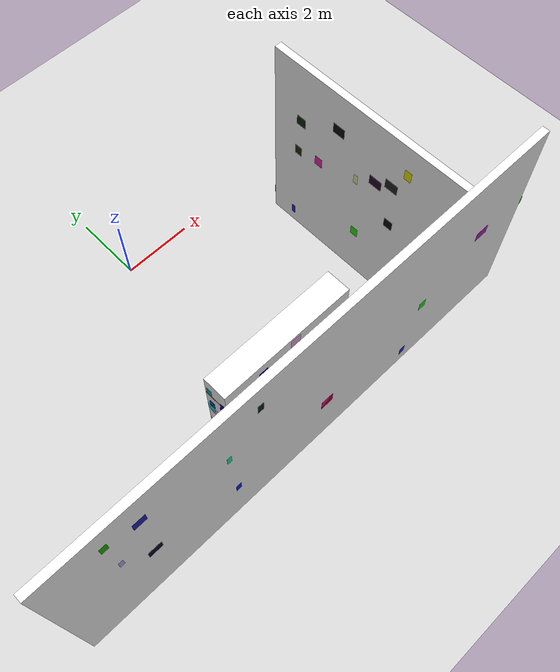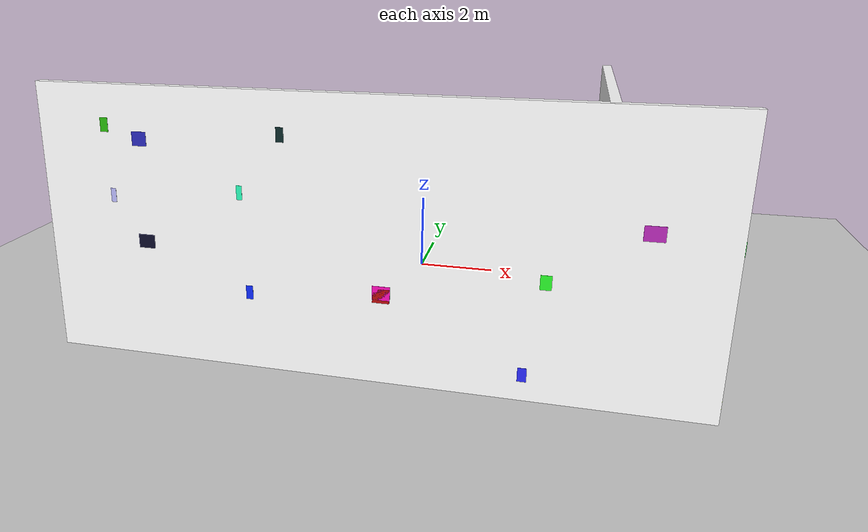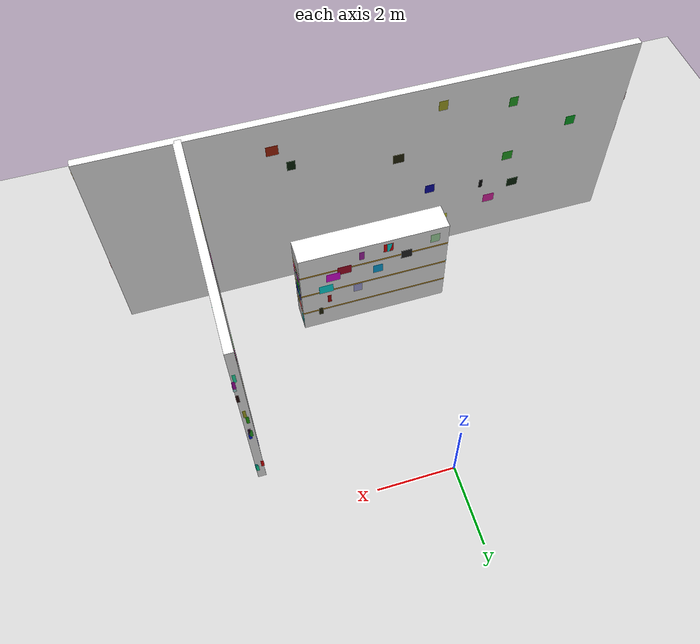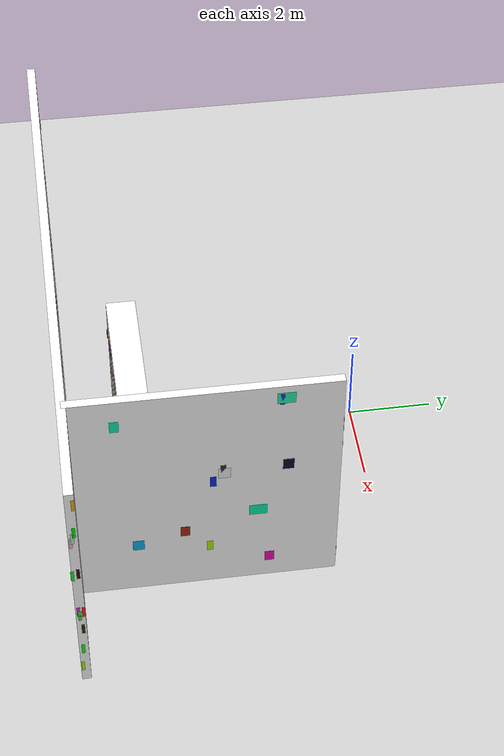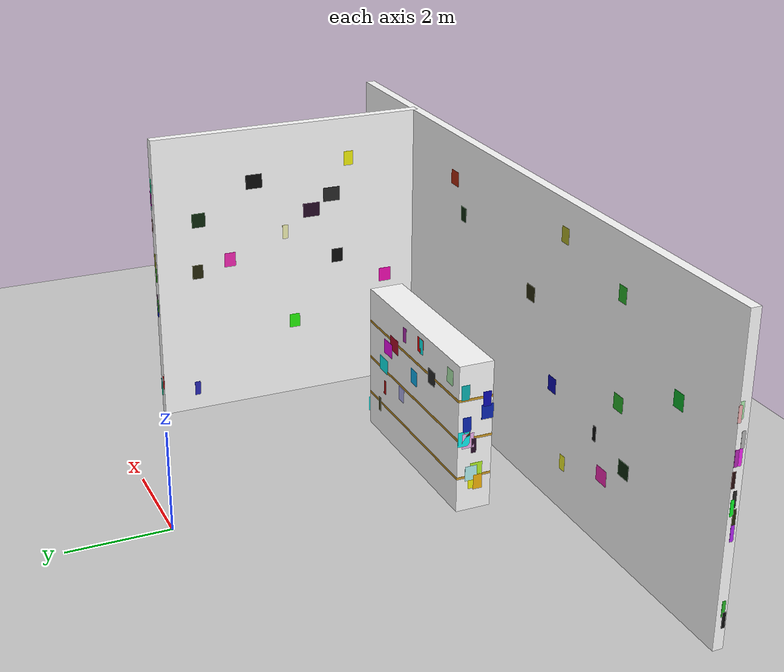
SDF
<sdf version="1.9">
 <world name="default">
  <model name="ground_plane">
   <static>true</static>
   <link name="link">
    <collision name="collision">
     <geometry><plane><normal>0 0 1</normal><size>1 1</size></plane></geometry>
    </collision>
    <visual name="visual">
     <geometry><plane><normal>0 0 1</normal><size>500 500</size></plane></geometry>
     <material>
      <ambient>0.8 0.8 0.8 1</ambient>
      <diffuse>0.8 0.8 0.8 1</diffuse>
      <specular>0.8 0.8 0.8 1</specular>
     </material>
    </visual>
    <inertial>
     <mass>1</mass>
     <inertia><ixx>1</ixx><ixy>0</ixy><ixz>0</ixz><iyy>1</iyy><iyz>0</iyz><izz>1</izz></inertia>
    </inertial>
   </link>
  </model>
  <model name="wall_south">
   <static>true</static>
   <pose>0 -7 3 0 0 0</pose>
   <link name="structure">
    <collision name="collision"><geometry><box><size>14 0.2 6</size></box></geometry></collision>
    <visual name="surface">
     <geometry><box><size>14 0.2 6</size></box></geometry>
     <material>
      <ambient>1 1 1 1</ambient>
      <diffuse>1 1 1 1</diffuse>
      <pbr>
       <metal>
        <albedo_map>model://warehouse_textures/materials/textures/wall_south.png</albedo_map>
        <metalness>0</metalness>
        <roughness>1</roughness>
       </metal>
      </pbr>
     </material>
    </visual>
    <visual name="feature_0_0">
     <pose>-7.002 0.05013029429316511 1.3344337788280045 0 0 0</pose>
     <geometry><box><size>0.004 0.06999999999999999 0.3</size></box></geometry>
     <material><ambient>0.7 0.95 0.7 1</ambient><diffuse>0.7 0.95 0.7 1</diffuse></material>
    </visual>
    <visual name="feature_0_1">
     <pose>-7.002 0.053626879045490364 0.5126375350169363 0 0 0</pose>
     <geometry><box><size>0.004 0.06999999999999999 0.3</size></box></geometry>
     <material><ambient>0.7 0.15 0.7 1</ambient><diffuse>0.7 0.15 0.7 1</diffuse></material>
    </visual>
    <visual name="feature_0_2">
     <pose>-7.002 -0.014323555653300915 0.5184565482892922 0 0 0</pose>
     <geometry><box><size>0.004 0.06999999999999999 0.3</size></box></geometry>
     <material><ambient>0.95 0.15 0.95 1</ambient><diffuse>0.95 0.15 0.95 1</diffuse></material>
    </visual>
    <visual name="feature_0_3">
     <pose>-7.002 0.07942451934433421 1.2721664787519549 0 0 0</pose>
     <geometry><box><size>0.004 0.06999999999999999 0.3</size></box></geometry>
     <material><ambient>0.95 0.7 0.7 1</ambient><diffuse>0.95 0.7 0.7 1</diffuse></material>
    </visual>
    <visual name="feature_0_4">
     <pose>-7.002 -0.031241482324715887 0.8213783852477801 0 0 0</pose>
     <geometry><box><size>0.004 0.06999999999999999 0.3</size></box></geometry>
     <material><ambient>0.7 0.7 0.7 1</ambient><diffuse>0.7 0.7 0.7 1</diffuse></material>
    </visual>
    <visual name="feature_0_5">
     <pose>-7.002 0.033509999577640975 -0.36077187990043225 0 0 0</pose>
     <geometry><box><size>0.004 0.06999999999999999 0.3</size></box></geometry>
     <material><ambient>0.04 0.95 0.15 1</ambient><diffuse>0.04 0.95 0.15 1</diffuse></material>
    </visual>
    <visual name="feature_0_6">
     <pose>-7.002 -0.02649520504299914 -2.222417838808128 0 0 0</pose>
     <geometry><box><size>0.004 0.06999999999999999 0.3</size></box></geometry>
     <material><ambient>0.15 0.7 0.15 1</ambient><diffuse>0.15 0.7 0.15 1</diffuse></material>
    </visual>
    <visual name="feature_0_7">
     <pose>-7.002 0.006326238674518994 -0.21376637762866313 0 0 0</pose>
     <geometry><box><size>0.004 0.06999999999999999 0.3</size></box></geometry>
     <material><ambient>0.15 0.15 0.15 1</ambient><diffuse>0.15 0.15 0.15 1</diffuse></material>
    </visual>
    <visual name="feature_0_8">
     <pose>-7.002 -0.02319102826291799 -0.5412880793490009 0 0 0</pose>
     <geometry><box><size>0.004 0.06999999999999999 0.3</size></box></geometry>
     <material><ambient>0.15 0.15 0.04 1</ambient><diffuse>0.15 0.15 0.04 1</diffuse></material>
    </visual>
    <visual name="feature_0_9">
     <pose>-7.002 -0.05281084595567803 -2.4427364049877722 0 0 0</pose>
     <geometry><box><size>0.004 0.06999999999999999 0.3</size></box></geometry>
     <material><ambient>0.04 0.04 0.04 1</ambient><diffuse>0.04 0.04 0.04 1</diffuse></material>
    </visual>
    <visual name="feature_0_10">
     <pose>-7.002 -0.02206726810736683 -0.8268935963826314 0 0 0</pose>
     <geometry><box><size>0.004 0.06999999999999999 0.3</size></box></geometry>
     <material><ambient>0.7 0.15 0.95 1</ambient><diffuse>0.7 0.15 0.95 1</diffuse></material>
    </visual>
    <visual name="feature_0_11">
     <pose>-7.002 0.06690281060180585 0.13786475028770706 0 0 0</pose>
     <geometry><box><size>0.004 0.06999999999999999 0.3</size></box></geometry>
     <material><ambient>0.15 0.04 0.04 1</ambient><diffuse>0.15 0.04 0.04 1</diffuse></material>
    </visual>
    <visual name="feature_1_0">
     <pose>7.002 0.06450336411470818 2.68545447530506 0 0 0</pose>
     <geometry><box><size>0.004 0.06999999999999999 0.3</size></box></geometry>
     <material><ambient>0.95 0.7 0.04 1</ambient><diffuse>0.95 0.7 0.04 1</diffuse></material>
    </visual>
    <visual name="feature_1_1">
     <pose>7.002 -0.08260006728813388 0.5347834316504732 0 0 0</pose>
     <geometry><box><size>0.004 0.06999999999999999 0.3</size></box></geometry>
     <material><ambient>0.04 0.95 0.15 1</ambient><diffuse>0.04 0.95 0.15 1</diffuse></material>
    </visual>
    <visual name="feature_1_2">
     <pose>7.002 -0.011583482624690819 -1.9228539210441242 0 0 0</pose>
     <geometry><box><size>0.004 0.06999999999999999 0.3</size></box></geometry>
     <material><ambient>0.15 0.95 0.15 1</ambient><diffuse>0.15 0.95 0.15 1</diffuse></material>
    </visual>
    <visual name="feature_1_3">
     <pose>7.002 -0.013183834536215355 -0.7871604675557424 0 0 0</pose>
     <geometry><box><size>0.004 0.06999999999999999 0.3</size></box></geometry>
     <material><ambient>0.15 0.95 0.15 1</ambient><diffuse>0.15 0.95 0.15 1</diffuse></material>
    </visual>
    <visual name="feature_1_4">
     <pose>7.002 0.07380699173682594 -0.664364832384468 0 0 0</pose>
     <geometry><box><size>0.004 0.06999999999999999 0.3</size></box></geometry>
     <material><ambient>0.95 0.15 0.15 1</ambient><diffuse>0.95 0.15 0.15 1</diffuse></material>
    </visual>
    <visual name="feature_1_5">
     <pose>7.002 -0.048694230574671815 1.5630788077055522 0 0 0</pose>
     <geometry><box><size>0.004 0.06999999999999999 0.3</size></box></geometry>
     <material><ambient>0.95 0.7 0.95 1</ambient><diffuse>0.95 0.7 0.95 1</diffuse></material>
    </visual>
    <visual name="feature_1_6">
     <pose>7.002 0.028389967478109568 1.868636731459282 0 0 0</pose>
     <geometry><box><size>0.004 0.06999999999999999 0.3</size></box></geometry>
     <material><ambient>0.04 0.95 0.04 1</ambient><diffuse>0.04 0.95 0.04 1</diffuse></material>
    </visual>
    <visual name="feature_1_7">
     <pose>7.002 -0.01131909396849029 1.6887105902124375 0 0 0</pose>
     <geometry><box><size>0.004 0.06999999999999999 0.3</size></box></geometry>
     <material><ambient>0.7 0.95 0.7 1</ambient><diffuse>0.7 0.95 0.7 1</diffuse></material>
    </visual>
    <visual name="feature_1_8">
     <pose>7.002 -0.05081834634932061 -2.52169160086991 0 0 0</pose>
     <geometry><box><size>0.004 0.06999999999999999 0.3</size></box></geometry>
     <material><ambient>0.7 0.95 0.15 1</ambient><diffuse>0.7 0.95 0.15 1</diffuse></material>
    </visual>
    <visual name="feature_1_9">
     <pose>7.002 -0.034713704641175 -0.6536029513765729 0 0 0</pose>
     <geometry><box><size>0.004 0.06999999999999999 0.3</size></box></geometry>
     <material><ambient>0.95 0.15 0.95 1</ambient><diffuse>0.95 0.15 0.95 1</diffuse></material>
    </visual>
    <visual name="feature_1_10">
     <pose>7.002 0.028761669940748094 -1.226467510396191 0 0 0</pose>
     <geometry><box><size>0.004 0.06999999999999999 0.3</size></box></geometry>
     <material><ambient>0.15 0.15 0.04 1</ambient><diffuse>0.15 0.15 0.04 1</diffuse></material>
    </visual>
    <visual name="feature_1_11">
     <pose>7.002 0.03662493447125069 0.5929723749907376 0 0 0</pose>
     <geometry><box><size>0.004 0.06999999999999999 0.3</size></box></geometry>
     <material><ambient>0.15 0.04 0.04 1</ambient><diffuse>0.15 0.04 0.04 1</diffuse></material>
    </visual>
    <visual name="feature_2_0">
     <pose>-2.4029796759381647 -0.10200000000000001 -1.271434456737637 0 0 0</pose>
     <geometry><box><size>0.15301972618142512 0.004 0.3</size></box></geometry>
     <material><ambient>0.04 0.15 0.95 1</ambient><diffuse>0.04 0.15 0.95 1</diffuse></material>
    </visual>
    <visual name="feature_2_1">
     <pose>-4.704728112849553 -0.10200000000000001 1.8899872533510402 0 0 0</pose>
     <geometry><box><size>0.3194365047836309 0.004 0.3</size></box></geometry>
     <material><ambient>0.15 0.15 0.7 1</ambient><diffuse>0.15 0.15 0.7 1</diffuse></material>
    </visual>
    <visual name="feature_2_2">
     <pose>-2.5403862817549006 -0.10200000000000001 0.8930933905496885 0 0 0</pose>
     <geometry><box><size>0.1221163689964482 0.004 0.3</size></box></geometry>
     <material><ambient>0.15 0.95 0.7 1</ambient><diffuse>0.15 0.95 0.7 1</diffuse></material>
    </visual>
    <visual name="feature_2_3">
     <pose>-1.6306037418121857 -0.10200000000000001 2.1312175730096907 0 0 0</pose>
     <geometry><box><size>0.1594067344939466 0.004 0.3</size></box></geometry>
     <material><ambient>0.04 0.15 0.15 1</ambient><diffuse>0.04 0.15 0.15 1</diffuse></material>
    </visual>
    <visual name="feature_2_4">
     <pose>-4.709416479293927 -0.10200000000000001 -0.3308416464242767 0 0 0</pose>
     <geometry><box><size>0.36822410486320134 0.004 0.3</size></box></geometry>
     <material><ambient>0.04 0.04 0.15 1</ambient><diffuse>0.04 0.04 0.15 1</diffuse></material>
    </visual>
    <visual name="feature_2_5">
     <pose>-5.481536256598476 -0.10200000000000001 2.1508934084905516 0 0 0</pose>
     <geometry><box><size>0.1743473653715774 0.004 0.3</size></box></geometry>
     <material><ambient>0.15 0.7 0.04 1</ambient><diffuse>0.15 0.7 0.04 1</diffuse></material>
    </visual>
    <visual name="feature_2_6">
     <pose>3.639597669959689 -0.10200000000000001 -0.44284286626378044 0 0 0</pose>
     <geometry><box><size>0.22242148415727694 0.004 0.3</size></box></geometry>
     <material><ambient>0.15 0.95 0.15 1</ambient><diffuse>0.15 0.95 0.15 1</diffuse></material>
    </visual>
    <visual name="feature_2_7">
     <pose>0.4271078491047673 -0.10200000000000001 -1.0628347992002252 0 0 0</pose>
     <geometry><box><size>0.3516741174449177 0.004 0.3</size></box></geometry>
     <material><ambient>0.7 0.04 0.04 1</ambient><diffuse>0.7 0.04 0.04 1</diffuse></material>
    </visual>
    <visual name="feature_2_8">
     <pose>0.42920601847937156 -0.10200000000000001 -1.0008616115868496 0 0 0</pose>
     <geometry><box><size>0.36893222837835393 0.004 0.3</size></box></geometry>
     <material><ambient>0.95 0.04 0.7 1</ambient><diffuse>0.95 0.04 0.7 1</diffuse></material>
    </visual>
    <visual name="feature_2_9">
     <pose>3.303983123943101 -0.10200000000000001 -2.435756244164814 0 0 0</pose>
     <geometry><box><size>0.18238401828457473 0.004 0.3</size></box></geometry>
     <material><ambient>0.15 0.15 0.95 1</ambient><diffuse>0.15 0.15 0.95 1</diffuse></material>
    </visual>
    <visual name="feature_2_10">
     <pose>5.480055527675781 -0.10200000000000001 0.688664998123341 0 0 0</pose>
     <geometry><box><size>0.39323818227977214 0.004 0.3</size></box></geometry>
     <material><ambient>0.7 0.15 0.7 1</ambient><diffuse>0.7 0.15 0.7 1</diffuse></material>
    </visual>
    <visual name="feature_2_11">
     <pose>-5.404282146829244 -0.10200000000000001 0.6460780768385304 0 0 0</pose>
     <geometry><box><size>0.11832070714311219 0.004 0.3</size></box></geometry>
     <material><ambient>0.7 0.7 0.95 1</ambient><diffuse>0.7 0.7 0.95 1</diffuse></material>
    </visual>
    <visual name="feature_3_0">
     <pose>-3.469024428247825 0.10200000000000001 -1.620479554302231 0 0 0</pose>
     <geometry><box><size>0.32611919888681085 0.004 0.3</size></box></geometry>
     <material><ambient>0.95 0.15 0.7 1</ambient><diffuse>0.95 0.15 0.7 1</diffuse></material>
    </visual>
    <visual name="feature_3_1">
     <pose>2.496609554513557 0.10200000000000001 2.102235758403199 0 0 0</pose>
     <geometry><box><size>0.3041412456497423 0.004 0.3</size></box></geometry>
     <material><ambient>0.7 0.15 0.04 1</ambient><diffuse>0.7 0.15 0.04 1</diffuse></material>
    </visual>
    <visual name="feature_3_2">
     <pose>-1.6444254859621408 0.10200000000000001 -0.642777461246741 0 0 0</pose>
     <geometry><box><size>0.26782309748555577 0.004 0.3</size></box></geometry>
     <material><ambient>0.04 0.04 0.7 1</ambient><diffuse>0.04 0.04 0.7 1</diffuse></material>
    </visual>
    <visual name="feature_3_3">
     <pose>2.0794254198614457 0.10200000000000001 1.465026459522334 0 0 0</pose>
     <geometry><box><size>0.2182699326110329 0.004 0.3</size></box></geometry>
     <material><ambient>0.04 0.15 0.04 1</ambient><diffuse>0.04 0.15 0.04 1</diffuse></material>
    </visual>
    <visual name="feature_3_4">
     <pose>-4.1313465546691575 0.10200000000000001 -1.164722269733362 0 0 0</pose>
     <geometry><box><size>0.3163317013369229 0.004 0.3</size></box></geometry>
     <material><ambient>0.04 0.15 0.04 1</ambient><diffuse>0.04 0.15 0.04 1</diffuse></material>
    </visual>
    <visual name="feature_3_5">
     <pose>-3.155975064294834 0.10200000000000001 -0.9271056754248004 0 0 0</pose>
     <geometry><box><size>0.10317137432118983 0.004 0.3</size></box></geometry>
     <material><ambient>0.04 0.04 0.04 1</ambient><diffuse>0.04 0.04 0.04 1</diffuse></material>
    </visual>
    <visual name="feature_3_6">
     <pose>-3.7281642928547623 0.10200000000000001 1.9566934200549762 0 0 0</pose>
     <geometry><box><size>0.22802913965751254 0.004 0.3</size></box></geometry>
     <material><ambient>0.15 0.7 0.15 1</ambient><diffuse>0.15 0.7 0.15 1</diffuse></material>
    </visual>
    <visual name="feature_3_7">
     <pose>-1.8231379939122307 0.10200000000000001 2.349784061363769 0 0 0</pose>
     <geometry><box><size>0.23568298246755162 0.004 0.3</size></box></geometry>
     <material><ambient>0.7 0.7 0.15 1</ambient><diffuse>0.7 0.7 0.15 1</diffuse></material>
    </visual>
    <visual name="feature_3_8">
     <pose>-2.1495540054644997 0.10200000000000001 -2.029957619902869 0 0 0</pose>
     <geometry><box><size>0.17637276640077826 0.004 0.3</size></box></geometry>
     <material><ambient>0.95 0.95 0.15 1</ambient><diffuse>0.95 0.95 0.15 1</diffuse></material>
    </visual>
    <visual name="feature_3_9">
     <pose>-3.8293673647596727 0.10200000000000001 -0.013000887557255592 0 0 0</pose>
     <geometry><box><size>0.2837734355302372 0.004 0.3</size></box></geometry>
     <material><ambient>0.15 0.7 0.15 1</ambient><diffuse>0.15 0.7 0.15 1</diffuse></material>
    </visual>
    <visual name="feature_3_10">
     <pose>-0.7074972291922821 0.10200000000000001 0.8315936040870096 0 0 0</pose>
     <geometry><box><size>0.3034151856676342 0.004 0.3</size></box></geometry>
     <material><ambient>0.15 0.15 0.04 1</ambient><diffuse>0.15 0.15 0.04 1</diffuse></material>
    </visual>
    <visual name="feature_3_11">
     <pose>-5.507283317989444 0.10200000000000001 0.8140772229232067 0 0 0</pose>
     <geometry><box><size>0.2665901325083502 0.004 0.3</size></box></geometry>
     <material><ambient>0.04 0.7 0.15 1</ambient><diffuse>0.04 0.7 0.15 1</diffuse></material>
    </visual>
   </link>
  </model>
  <model name="room_partition_south">
   <static>true</static>
   <pose>4.6 -4.1 3 0 0 0</pose>
   <link name="structure">
    <collision name="collision"><geometry><box><size>0.2 5.8 6</size></box></geometry></collision>
    <visual name="surface">
     <geometry><box><size>0.2 5.8 6</size></box></geometry>
     <material>
      <ambient>1 1 1 1</ambient>
      <diffuse>1 1 1 1</diffuse>
      <pbr>
       <metal>
        <albedo_map>model://warehouse_textures/materials/textures/room_partition_south.png</albedo_map>
        <metalness>0</metalness>
        <roughness>1</roughness>
       </metal>
      </pbr>
     </material>
    </visual>
    <visual name="feature_0_0">
     <pose>-0.10200000000000001 2.1709150930400947 -2.52344042349194 0 0 0</pose>
     <geometry><box><size>0.004 0.12185791453634244 0.3</size></box></geometry>
     <material><ambient>0.15 0.15 0.7 1</ambient><diffuse>0.15 0.15 0.7 1</diffuse></material>
    </visual>
    <visual name="feature_0_1">
     <pose>-0.10200000000000001 1.3494884280232533 0.27098438040863515 0 0 0</pose>
     <geometry><box><size>0.004 0.24074818795024663 0.3</size></box></geometry>
     <material><ambient>0.95 0.15 0.7 1</ambient><diffuse>0.95 0.15 0.7 1</diffuse></material>
    </visual>
    <visual name="feature_0_2">
     <pose>-0.10200000000000001 -0.050919529782320616 -1.336852252964101 0 0 0</pose>
     <geometry><box><size>0.004 0.2310943071635888 0.3</size></box></geometry>
     <material><ambient>0.15 0.95 0.04 1</ambient><diffuse>0.15 0.95 0.04 1</diffuse></material>
    </visual>
    <visual name="feature_0_3">
     <pose>-0.10200000000000001 -2.159398530668011 -0.6026725821727488 0 0 0</pose>
     <geometry><box><size>0.004 0.27363621435690316 0.3</size></box></geometry>
     <material><ambient>0.95 0.04 0.7 1</ambient><diffuse>0.95 0.04 0.7 1</diffuse></material>
    </visual>
    <visual name="feature_0_4">
     <pose>-0.10200000000000001 1.9909066356012017 1.2194051303418627 0 0 0</pose>
     <geometry><box><size>0.004 0.2854975150144328 0.3</size></box></geometry>
     <material><ambient>0.04 0.15 0.04 1</ambient><diffuse>0.04 0.15 0.04 1</diffuse></material>
    </visual>
    <visual name="feature_0_5">
     <pose>-0.10200000000000001 2.05366636042396 0.10699784121333034 0 0 0</pose>
     <geometry><box><size>0.004 0.22615411521465176 0.3</size></box></geometry>
     <material><ambient>0.15 0.15 0.04 1</ambient><diffuse>0.15 0.15 0.04 1</diffuse></material>
    </visual>
    <visual name="feature_0_6">
     <pose>-0.10200000000000001 -1.3095306119570913 2.1310093648389232 0 0 0</pose>
     <geometry><box><size>0.004 0.20313532304516438 0.3</size></box></geometry>
     <material><ambient>0.95 0.95 0.04 1</ambient><diffuse>0.95 0.95 0.04 1</diffuse></material>
    </visual>
    <visual name="feature_0_7">
     <pose>-0.10200000000000001 -0.466831988143664 1.110566151039989 0 0 0</pose>
     <geometry><box><size>0.004 0.36884349280556994 0.3</size></box></geometry>
     <material><ambient>0.15 0.04 0.15 1</ambient><diffuse>0.15 0.04 0.15 1</diffuse></material>
    </visual>
    <visual name="feature_0_8">
     <pose>-0.10200000000000001 0.12045253341750861 0.7055017036588871 0 0 0</pose>
     <geometry><box><size>0.004 0.12673147228578552 0.3</size></box></geometry>
     <material><ambient>0.95 0.95 0.7 1</ambient><diffuse>0.95 0.95 0.7 1</diffuse></material>
    </visual>
    <visual name="feature_0_9">
     <pose>-0.10200000000000001 -1.039254226042634 0.009838577024662953 0 0 0</pose>
     <geometry><box><size>0.004 0.25501991116502554 0.3</size></box></geometry>
     <material><ambient>0.04 0.04 0.04 1</ambient><diffuse>0.04 0.04 0.04 1</diffuse></material>
    </visual>
    <visual name="feature_0_10">
     <pose>-0.10200000000000001 -0.9282153609606039 1.3938844822769916 0 0 0</pose>
     <geometry><box><size>0.004 0.3683992520736522 0.3</size></box></geometry>
     <material><ambient>0.15 0.15 0.15 1</ambient><diffuse>0.15 0.15 0.15 1</diffuse></material>
    </visual>
    <visual name="feature_0_11">
     <pose>-0.10200000000000001 0.7824751876549971 1.89049786487538 0 0 0</pose>
     <geometry><box><size>0.004 0.3515360641381716 0.3</size></box></geometry>
     <material><ambient>0.04 0.04 0.04 1</ambient><diffuse>0.04 0.04 0.04 1</diffuse></material>
    </visual>
    <visual name="feature_1_0">
     <pose>0.10200000000000001 0.06049787162061504 -1.7881336603528717 0 0 0</pose>
     <geometry><box><size>0.004 0.13177021903417838 0.3</size></box></geometry>
     <material><ambient>0.7 0.95 0.04 1</ambient><diffuse>0.7 0.95 0.04 1</diffuse></material>
    </visual>
    <visual name="feature_1_1">
     <pose>0.10200000000000001 1.761939994951974 0.654294228170262 0 0 0</pose>
     <geometry><box><size>0.004 0.240635289641556 0.3</size></box></geometry>
     <material><ambient>0.04 0.04 0.15 1</ambient><diffuse>0.04 0.04 0.15 1</diffuse></material>
    </visual>
    <visual name="feature_1_2">
     <pose>0.10200000000000001 -1.8707076454735243 2.297220641862662 0 0 0</pose>
     <geometry><box><size>0.004 0.1950376891250068 0.3</size></box></geometry>
     <material><ambient>0.04 0.95 0.7 1</ambient><diffuse>0.04 0.95 0.7 1</diffuse></material>
    </visual>
    <visual name="feature_1_3">
     <pose>0.10200000000000001 0.3954802805329858 0.5622968216459214 0 0 0</pose>
     <geometry><box><size>0.004 0.262108306443366 0.3</size></box></geometry>
     <material><ambient>0.95 0.95 0.95 1</ambient><diffuse>0.95 0.95 0.95 1</diffuse></material>
    </visual>
    <visual name="feature_1_4">
     <pose>0.10200000000000001 -0.47734127017940997 -1.222964050049925 0 0 0</pose>
     <geometry><box><size>0.004 0.20427671897808677 0.3</size></box></geometry>
     <material><ambient>0.7 0.15 0.04 1</ambient><diffuse>0.7 0.15 0.04 1</diffuse></material>
    </visual>
    <visual name="feature_1_5">
     <pose>0.10200000000000001 1.387580484368525 -2.363711011383825 0 0 0</pose>
     <geometry><box><size>0.004 0.21084392864908663 0.3</size></box></geometry>
     <material><ambient>0.95 0.04 0.7 1</ambient><diffuse>0.95 0.04 0.7 1</diffuse></material>
    </visual>
    <visual name="feature_1_6">
     <pose>0.10200000000000001 1.5986297118367006 2.636416786391348 0 0 0</pose>
     <geometry><box><size>0.004 0.1042069368390579 0.3</size></box></geometry>
     <material><ambient>0.15 0.15 0.95 1</ambient><diffuse>0.15 0.15 0.95 1</diffuse></material>
    </visual>
    <visual name="feature_1_7">
     <pose>0.10200000000000001 1.6825496107157125 2.668401002214911 0 0 0</pose>
     <geometry><box><size>0.004 0.3888611341664422 0.3</size></box></geometry>
     <material><ambient>0.15 0.95 0.7 1</ambient><diffuse>0.15 0.95 0.7 1</diffuse></material>
    </visual>
    <visual name="feature_1_8">
     <pose>0.10200000000000001 1.126605502948975 -0.7330846481504774 0 0 0</pose>
     <geometry><box><size>0.004 0.39737651707530164 0.3</size></box></geometry>
     <material><ambient>0.04 0.95 0.7 1</ambient><diffuse>0.04 0.95 0.7 1</diffuse></material>
    </visual>
    <visual name="feature_1_9">
     <pose>0.10200000000000001 0.1517120562242198 0.31935787018720774 0 0 0</pose>
     <geometry><box><size>0.004 0.13551569525776896 0.3</size></box></geometry>
     <material><ambient>0.04 0.15 0.95 1</ambient><diffuse>0.04 0.15 0.95 1</diffuse></material>
    </visual>
    <visual name="feature_1_10">
     <pose>0.10200000000000001 -1.5100234070630538 -1.5362396017282862 0 0 0</pose>
     <geometry><box><size>0.004 0.25205466505659313 0.3</size></box></geometry>
     <material><ambient>0.04 0.7 0.95 1</ambient><diffuse>0.04 0.7 0.95 1</diffuse></material>
    </visual>
    <visual name="feature_1_11">
     <pose>0.10200000000000001 0.36692434733320534 0.6589152834829965 0 0 0</pose>
     <geometry><box><size>0.004 0.11233463375900332 0.3</size></box></geometry>
     <material><ambient>0.15 0.15 0.15 1</ambient><diffuse>0.15 0.15 0.15 1</diffuse></material>
    </visual>
    <visual name="feature_2_0">
     <pose>-0.03104075013813297 -2.9019999999999997 1.9163904146755817 0 0 0</pose>
     <geometry><box><size>0.06999999999999999 0.004 0.3</size></box></geometry>
     <material><ambient>0.15 0.7 0.15 1</ambient><diffuse>0.15 0.7 0.15 1</diffuse></material>
    </visual>
    <visual name="feature_2_1">
     <pose>-0.033218877345828526 -2.9019999999999997 -2.1156691529077465 0 0 0</pose>
     <geometry><box><size>0.06999999999999999 0.004 0.3</size></box></geometry>
     <material><ambient>0.15 0.95 0.7 1</ambient><diffuse>0.15 0.95 0.7 1</diffuse></material>
    </visual>
    <visual name="feature_2_2">
     <pose>-0.04215527720349947 -2.9019999999999997 -1.9562920686444993 0 0 0</pose>
     <geometry><box><size>0.06999999999999999 0.004 0.3</size></box></geometry>
     <material><ambient>0.7 0.95 0.15 1</ambient><diffuse>0.7 0.95 0.15 1</diffuse></material>
    </visual>
    <visual name="feature_2_3">
     <pose>-0.002511453393265889 -2.9019999999999997 2.510687648575437 0 0 0</pose>
     <geometry><box><size>0.06999999999999999 0.004 0.3</size></box></geometry>
     <material><ambient>0.95 0.15 0.95 1</ambient><diffuse>0.95 0.15 0.95 1</diffuse></material>
    </visual>
    <visual name="feature_2_4">
     <pose>0.050280290983582984 -2.9019999999999997 -2.167192485983678 0 0 0</pose>
     <geometry><box><size>0.06999999999999999 0.004 0.3</size></box></geometry>
     <material><ambient>0.04 0.15 0.15 1</ambient><diffuse>0.04 0.15 0.15 1</diffuse></material>
    </visual>
    <visual name="feature_2_5">
     <pose>0.07474736808689712 -2.9019999999999997 0.30873322590413643 0 0 0</pose>
     <geometry><box><size>0.06999999999999999 0.004 0.3</size></box></geometry>
     <material><ambient>0.7 0.7 0.04 1</ambient><diffuse>0.7 0.7 0.04 1</diffuse></material>
    </visual>
    <visual name="feature_2_6">
     <pose>-0.012398501398095396 -2.9019999999999997 -0.47240348276678334 0 0 0</pose>
     <geometry><box><size>0.06999999999999999 0.004 0.3</size></box></geometry>
     <material><ambient>0.7 0.95 0.7 1</ambient><diffuse>0.7 0.95 0.7 1</diffuse></material>
    </visual>
    <visual name="feature_2_7">
     <pose>-0.06915154734531317 -2.9019999999999997 1.4181413326639216 0 0 0</pose>
     <geometry><box><size>0.06999999999999999 0.004 0.3</size></box></geometry>
     <material><ambient>0.04 0.15 0.04 1</ambient><diffuse>0.04 0.15 0.04 1</diffuse></material>
    </visual>
    <visual name="feature_2_8">
     <pose>-0.01412212008344671 -2.9019999999999997 1.7662760379453806 0 0 0</pose>
     <geometry><box><size>0.06999999999999999 0.004 0.3</size></box></geometry>
     <material><ambient>0.15 0.15 0.15 1</ambient><diffuse>0.15 0.15 0.15 1</diffuse></material>
    </visual>
    <visual name="feature_2_9">
     <pose>0.03564757352582715 -2.9019999999999997 1.5096004684774078 0 0 0</pose>
     <geometry><box><size>0.06999999999999999 0.004 0.3</size></box></geometry>
     <material><ambient>0.04 0.7 0.15 1</ambient><diffuse>0.04 0.7 0.15 1</diffuse></material>
    </visual>
    <visual name="feature_2_10">
     <pose>0.07181786696822055 -2.9019999999999997 0.49701980853664374 0 0 0</pose>
     <geometry><box><size>0.06999999999999999 0.004 0.3</size></box></geometry>
     <material><ambient>0.95 0.04 0.15 1</ambient><diffuse>0.95 0.04 0.15 1</diffuse></material>
    </visual>
    <visual name="feature_2_11">
     <pose>0.005349882979684306 -2.9019999999999997 -1.5070324726757172 0 0 0</pose>
     <geometry><box><size>0.06999999999999999 0.004 0.3</size></box></geometry>
     <material><ambient>0.95 0.95 0.15 1</ambient><diffuse>0.95 0.95 0.15 1</diffuse></material>
    </visual>
    <visual name="feature_3_0">
     <pose>-0.08209729531623891 2.9019999999999997 -2.277475342837858 0 0 0</pose>
     <geometry><box><size>0.06999999999999999 0.004 0.3</size></box></geometry>
     <material><ambient>0.95 0.04 0.04 1</ambient><diffuse>0.95 0.04 0.04 1</diffuse></material>
    </visual>
    <visual name="feature_3_1">
     <pose>0.02762520796303243 2.9019999999999997 2.0226306584273717 0 0 0</pose>
     <geometry><box><size>0.06999999999999999 0.004 0.3</size></box></geometry>
     <material><ambient>0.15 0.95 0.7 1</ambient><diffuse>0.15 0.95 0.7 1</diffuse></material>
    </visual>
    <visual name="feature_3_2">
     <pose>0.06981254141333014 2.9019999999999997 -2.3837887807294034 0 0 0</pose>
     <geometry><box><size>0.06999999999999999 0.004 0.3</size></box></geometry>
     <material><ambient>0.04 0.7 0.7 1</ambient><diffuse>0.04 0.7 0.7 1</diffuse></material>
    </visual>
    <visual name="feature_3_3">
     <pose>-0.012765856021369912 2.9019999999999997 -0.5434613560372914 0 0 0</pose>
     <geometry><box><size>0.06999999999999999 0.004 0.3</size></box></geometry>
     <material><ambient>0.15 0.7 0.15 1</ambient><diffuse>0.15 0.7 0.15 1</diffuse></material>
    </visual>
    <visual name="feature_3_4">
     <pose>-0.013289343524289052 2.9019999999999997 0.12752251701161121 0 0 0</pose>
     <geometry><box><size>0.06999999999999999 0.004 0.3</size></box></geometry>
     <material><ambient>0.15 0.7 0.04 1</ambient><diffuse>0.15 0.7 0.04 1</diffuse></material>
    </visual>
    <visual name="feature_3_5">
     <pose>0.07250299561596533 2.9019999999999997 1.1739649821136315 0 0 0</pose>
     <geometry><box><size>0.06999999999999999 0.004 0.3</size></box></geometry>
     <material><ambient>0.15 0.04 0.04 1</ambient><diffuse>0.15 0.04 0.04 1</diffuse></material>
    </visual>
    <visual name="feature_3_6">
     <pose>0.01672400078461206 2.9019999999999997 -0.4537627295160731 0 0 0</pose>
     <geometry><box><size>0.06999999999999999 0.004 0.3</size></box></geometry>
     <material><ambient>0.15 0.04 0.15 1</ambient><diffuse>0.15 0.04 0.15 1</diffuse></material>
    </visual>
    <visual name="feature_3_7">
     <pose>0.05644553287219291 2.9019999999999997 -2.4659315394386696 0 0 0</pose>
     <geometry><box><size>0.06999999999999999 0.004 0.3</size></box></geometry>
     <material><ambient>0.04 0.95 0.7 1</ambient><diffuse>0.04 0.95 0.7 1</diffuse></material>
    </visual>
    <visual name="feature_3_8">
     <pose>0.07342623298988503 2.9019999999999997 1.7562834005053247 0 0 0</pose>
     <geometry><box><size>0.06999999999999999 0.004 0.3</size></box></geometry>
     <material><ambient>0.7 0.04 0.7 1</ambient><diffuse>0.7 0.04 0.7 1</diffuse></material>
    </visual>
    <visual name="feature_3_9">
     <pose>0.07855592352205683 2.9019999999999997 1.6517766545281285 0 0 0</pose>
     <geometry><box><size>0.06999999999999999 0.004 0.3</size></box></geometry>
     <material><ambient>0.7 0.95 0.95 1</ambient><diffuse>0.7 0.95 0.95 1</diffuse></material>
    </visual>
    <visual name="feature_3_10">
     <pose>0.01917523501809433 2.9019999999999997 0.43764683278143535 0 0 0</pose>
     <geometry><box><size>0.06999999999999999 0.004 0.3</size></box></geometry>
     <material><ambient>0.7 0.7 0.15 1</ambient><diffuse>0.7 0.7 0.15 1</diffuse></material>
    </visual>
    <visual name="feature_3_11">
     <pose>0.023400225426117124 2.9019999999999997 -0.6550674274351254 0 0 0</pose>
     <geometry><box><size>0.06999999999999999 0.004 0.3</size></box></geometry>
     <material><ambient>0.04 0.15 0.95 1</ambient><diffuse>0.04 0.15 0.95 1</diffuse></material>
    </visual>
   </link>
  </model>
  <model name="rack_south">
   <static>true</static>
   <pose>0.5 -5.4 1.5 0 0 0</pose>
   <link name="structure">
    <collision name="collision"><geometry><box><size>4 0.7 3</size></box></geometry></collision>
    <visual name="surface">
     <geometry><box><size>4 0.7 3</size></box></geometry>
     <material>
      <ambient>1 1 1 1</ambient>
      <diffuse>1 1 1 1</diffuse>
      <pbr>
       <metal>
        <albedo_map>model://warehouse_textures/materials/textures/rack_south.png</albedo_map>
        <metalness>0</metalness>
        <roughness>1</roughness>
       </metal>
      </pbr>
     </material>
    </visual>
    <visual name="feature_0_0">
     <pose>-2.002 0.13946720041652994 -0.0410385809055831 0 0 0</pose>
     <geometry><box><size>0.004 0.24499999999999997 0.3</size></box></geometry>
     <material><ambient>0.95 0.7 0.95 1</ambient><diffuse>0.95 0.7 0.95 1</diffuse></material>
    </visual>
    <visual name="feature_0_1">
     <pose>-2.002 0.22438643874388636 0.006718441335858749 0 0 0</pose>
     <geometry><box><size>0.004 0.24499999999999997 0.3</size></box></geometry>
     <material><ambient>0.04 0.95 0.95 1</ambient><diffuse>0.04 0.95 0.95 1</diffuse></material>
    </visual>
    <visual name="feature_0_2">
     <pose>-2.002 0.16699817416791674 0.29438037278495455 0 0 0</pose>
     <geometry><box><size>0.004 0.170165624890808 0.3</size></box></geometry>
     <material><ambient>0.04 0.15 0.7 1</ambient><diffuse>0.04 0.15 0.7 1</diffuse></material>
    </visual>
    <visual name="feature_0_3">
     <pose>-2.002 0.16130221224450908 0.20397419933782812 0 0 0</pose>
     <geometry><box><size>0.004 0.11592632075452183 0.3</size></box></geometry>
     <material><ambient>0.15 0.15 0.04 1</ambient><diffuse>0.15 0.15 0.04 1</diffuse></material>
    </visual>
    <visual name="feature_0_4">
     <pose>-2.002 -0.047565497039033344 -0.6800509822541548 0 0 0</pose>
     <geometry><box><size>0.004 0.24499999999999997 0.3</size></box></geometry>
     <material><ambient>0.7 0.95 0.15 1</ambient><diffuse>0.7 0.95 0.15 1</diffuse></material>
    </visual>
    <visual name="feature_0_5">
     <pose>-2.002 0.018999276242557983 -0.16157696388756815 0 0 0</pose>
     <geometry><box><size>0.004 0.10359086883457314 0.3</size></box></geometry>
     <material><ambient>0.15 0.04 0.15 1</ambient><diffuse>0.15 0.04 0.15 1</diffuse></material>
    </visual>
    <visual name="feature_0_6">
     <pose>-2.002 0.21295061472833515 0.9530870015904607 0 0 0</pose>
     <geometry><box><size>0.004 0.1671871238615823 0.3</size></box></geometry>
     <material><ambient>0.04 0.7 0.7 1</ambient><diffuse>0.04 0.7 0.7 1</diffuse></material>
    </visual>
    <visual name="feature_0_7">
     <pose>-2.002 -0.24734097170021804 0.49186336666100394 0 0 0</pose>
     <geometry><box><size>0.004 0.24499999999999997 0.3</size></box></geometry>
     <material><ambient>0.04 0.15 0.7 1</ambient><diffuse>0.04 0.15 0.7 1</diffuse></material>
    </visual>
    <visual name="feature_0_8">
     <pose>-2.002 -0.08511822903406052 -0.942664851773581 0 0 0</pose>
     <geometry><box><size>0.004 0.18318892591856867 0.3</size></box></geometry>
     <material><ambient>0.95 0.7 0.04 1</ambient><diffuse>0.95 0.7 0.04 1</diffuse></material>
    </visual>
    <visual name="feature_0_9">
     <pose>-2.002 -0.23684830094630271 0.753174450801863 0 0 0</pose>
     <geometry><box><size>0.004 0.1665822084387022 0.3</size></box></geometry>
     <material><ambient>0.04 0.04 0.7 1</ambient><diffuse>0.04 0.04 0.7 1</diffuse></material>
    </visual>
    <visual name="feature_0_10">
     <pose>-2.002 0.05770931969652476 -0.734427595292887 0 0 0</pose>
     <geometry><box><size>0.004 0.24499999999999997 0.3</size></box></geometry>
     <material><ambient>0.7 0.95 0.95 1</ambient><diffuse>0.7 0.95 0.95 1</diffuse></material>
    </visual>
    <visual name="feature_0_11">
     <pose>-2.002 -0.0090682928733547 -0.9129473314164691 0 0 0</pose>
     <geometry><box><size>0.004 0.24499999999999997 0.3</size></box></geometry>
     <material><ambient>0.95 0.95 0.04 1</ambient><diffuse>0.95 0.95 0.04 1</diffuse></material>
    </visual>
    <visual name="feature_1_0">
     <pose>2.002 0.11614561063807882 -0.6934954890465325 0 0 0</pose>
     <geometry><box><size>0.004 0.18378247927208757 0.3</size></box></geometry>
     <material><ambient>0.7 0.04 0.04 1</ambient><diffuse>0.7 0.04 0.04 1</diffuse></material>
    </visual>
    <visual name="feature_1_1">
     <pose>2.002 0.06857325749635629 0.21108778221338742 0 0 0</pose>
     <geometry><box><size>0.004 0.24499999999999997 0.3</size></box></geometry>
     <material><ambient>0.04 0.95 0.04 1</ambient><diffuse>0.04 0.95 0.04 1</diffuse></material>
    </visual>
    <visual name="feature_1_2">
     <pose>2.002 0.15491302577637522 -0.18861898787207676 0 0 0</pose>
     <geometry><box><size>0.004 0.1251363140723044 0.3</size></box></geometry>
     <material><ambient>0.15 0.04 0.95 1</ambient><diffuse>0.15 0.04 0.95 1</diffuse></material>
    </visual>
    <visual name="feature_1_3">
     <pose>2.002 0.10716604385638434 0.20759311267136216 0 0 0</pose>
     <geometry><box><size>0.004 0.24499999999999997 0.3</size></box></geometry>
     <material><ambient>0.04 0.04 0.95 1</ambient><diffuse>0.04 0.04 0.95 1</diffuse></material>
    </visual>
    <visual name="feature_1_4">
     <pose>2.002 0.10410334295691476 0.5319398745958073 0 0 0</pose>
     <geometry><box><size>0.004 0.24499999999999997 0.3</size></box></geometry>
     <material><ambient>0.95 0.15 0.95 1</ambient><diffuse>0.95 0.15 0.95 1</diffuse></material>
    </visual>
    <visual name="feature_1_5">
     <pose>2.002 -0.04884002860220657 -0.6633369907327478 0 0 0</pose>
     <geometry><box><size>0.004 0.1307775954892898 0.3</size></box></geometry>
     <material><ambient>0.7 0.7 0.15 1</ambient><diffuse>0.7 0.7 0.15 1</diffuse></material>
    </visual>
    <visual name="feature_1_6">
     <pose>2.002 -0.05758026392642515 0.5770761347281068 0 0 0</pose>
     <geometry><box><size>0.004 0.228523286673878 0.3</size></box></geometry>
     <material><ambient>0.04 0.15 0.15 1</ambient><diffuse>0.04 0.15 0.15 1</diffuse></material>
    </visual>
    <visual name="feature_1_7">
     <pose>2.002 0.05561650312631722 -0.14730060368987696 0 0 0</pose>
     <geometry><box><size>0.004 0.24499999999999997 0.3</size></box></geometry>
     <material><ambient>0.15 0.95 0.7 1</ambient><diffuse>0.15 0.95 0.7 1</diffuse></material>
    </visual>
    <visual name="feature_1_8">
     <pose>2.002 -0.26120328736167986 0.5291442107960949 0 0 0</pose>
     <geometry><box><size>0.004 0.12594736685710034 0.3</size></box></geometry>
     <material><ambient>0.95 0.04 0.95 1</ambient><diffuse>0.95 0.04 0.95 1</diffuse></material>
    </visual>
    <visual name="feature_1_9">
     <pose>2.002 -0.18950176574412425 0.6450896419105647 0 0 0</pose>
     <geometry><box><size>0.004 0.15982053649217554 0.3</size></box></geometry>
     <material><ambient>0.7 0.04 0.04 1</ambient><diffuse>0.7 0.04 0.04 1</diffuse></material>
    </visual>
    <visual name="feature_1_10">
     <pose>2.002 -0.09654901650623182 -0.22408690139093101 0 0 0</pose>
     <geometry><box><size>0.004 0.24499999999999997 0.3</size></box></geometry>
     <material><ambient>0.04 0.15 0.95 1</ambient><diffuse>0.04 0.15 0.95 1</diffuse></material>
    </visual>
    <visual name="feature_1_11">
     <pose>2.002 0.2841778264422384 -1.08778994896029 0 0 0</pose>
     <geometry><box><size>0.004 0.18798847898776622 0.3</size></box></geometry>
     <material><ambient>0.15 0.95 0.95 1</ambient><diffuse>0.15 0.95 0.95 1</diffuse></material>
    </visual>
    <visual name="feature_2_0">
     <pose>0.46232401205337514 -0.352 -0.11321715094425744 0 0 0</pose>
     <geometry><box><size>0.10528924715167332 0.004 0.3</size></box></geometry>
     <material><ambient>0.04 0.95 0.7 1</ambient><diffuse>0.04 0.95 0.7 1</diffuse></material>
    </visual>
    <visual name="feature_2_1">
     <pose>-0.8117650748538686 -0.352 1.0243761267727796 0 0 0</pose>
     <geometry><box><size>0.27580933226495663 0.004 0.3</size></box></geometry>
     <material><ambient>0.04 0.04 0.7 1</ambient><diffuse>0.04 0.04 0.7 1</diffuse></material>
    </visual>
    <visual name="feature_2_2">
     <pose>1.2172057458588952 -0.352 0.3489109230643739 0 0 0</pose>
     <geometry><box><size>0.23439735757429306 0.004 0.3</size></box></geometry>
     <material><ambient>0.7 0.95 0.04 1</ambient><diffuse>0.7 0.95 0.04 1</diffuse></material>
    </visual>
    <visual name="feature_2_3">
     <pose>-0.8978597028188404 -0.352 0.8246814324869716 0 0 0</pose>
     <geometry><box><size>0.35490884525331234 0.004 0.3</size></box></geometry>
     <material><ambient>0.95 0.7 0.15 1</ambient><diffuse>0.95 0.7 0.15 1</diffuse></material>
    </visual>
    <visual name="feature_2_4">
     <pose>0.22081890974317653 -0.352 1.2759648786689528 0 0 0</pose>
     <geometry><box><size>0.31058533239278097 0.004 0.3</size></box></geometry>
     <material><ambient>0.95 0.7 0.95 1</ambient><diffuse>0.95 0.7 0.95 1</diffuse></material>
    </visual>
    <visual name="feature_2_5">
     <pose>0.14887747633067794 -0.352 0.835061054119004 0 0 0</pose>
     <geometry><box><size>0.32277325961243225 0.004 0.3</size></box></geometry>
     <material><ambient>0.7 0.95 0.7 1</ambient><diffuse>0.7 0.95 0.7 1</diffuse></material>
    </visual>
    <visual name="feature_2_6">
     <pose>-1.4491607309048786 -0.352 0.5691022629956513 0 0 0</pose>
     <geometry><box><size>0.33242667923456826 0.004 0.3</size></box></geometry>
     <material><ambient>0.95 0.15 0.15 1</ambient><diffuse>0.95 0.15 0.15 1</diffuse></material>
    </visual>
    <visual name="feature_2_7">
     <pose>-0.8943504361334054 -0.352 0.22036473768049358 0 0 0</pose>
     <geometry><box><size>0.11692896787531193 0.004 0.3</size></box></geometry>
     <material><ambient>0.7 0.15 0.95 1</ambient><diffuse>0.7 0.15 0.95 1</diffuse></material>
    </visual>
    <visual name="feature_2_8">
     <pose>1.36480111081326 -0.352 0.7175914796143226 0 0 0</pose>
     <geometry><box><size>0.32564267392404156 0.004 0.3</size></box></geometry>
     <material><ambient>0.15 0.7 0.7 1</ambient><diffuse>0.15 0.7 0.7 1</diffuse></material>
    </visual>
    <visual name="feature_2_9">
     <pose>-1.653179243102766 -0.352 0.26239930282977886 0 0 0</pose>
     <geometry><box><size>0.2431153505702054 0.004 0.3</size></box></geometry>
     <material><ambient>0.15 0.15 0.15 1</ambient><diffuse>0.15 0.15 0.15 1</diffuse></material>
    </visual>
    <visual name="feature_2_10">
     <pose>0.3992289837246894 -0.352 -0.6552791059590946 0 0 0</pose>
     <geometry><box><size>0.20491001370621625 0.004 0.3</size></box></geometry>
     <material><ambient>0.7 0.15 0.15 1</ambient><diffuse>0.7 0.15 0.15 1</diffuse></material>
    </visual>
    <visual name="feature_2_11">
     <pose>-1.4692987229972414 -0.352 -0.1364109335744439 0 0 0</pose>
     <geometry><box><size>0.22475743177597243 0.004 0.3</size></box></geometry>
     <material><ambient>0.95 0.95 0.7 1</ambient><diffuse>0.95 0.95 0.7 1</diffuse></material>
    </visual>
    <visual name="feature_3_0">
     <pose>-0.09478988421690482 0.352 0.444481629991778 0 0 0</pose>
     <geometry><box><size>0.2599398271474175 0.004 0.3</size></box></geometry>
     <material><ambient>0.04 0.7 0.95 1</ambient><diffuse>0.04 0.7 0.95 1</diffuse></material>
    </visual>
    <visual name="feature_3_1">
     <pose>0.814113582925579 0.352 0.7369997108040702 0 0 0</pose>
     <geometry><box><size>0.36893138193859465 0.004 0.3</size></box></geometry>
     <material><ambient>0.7 0.04 0.15 1</ambient><diffuse>0.7 0.04 0.15 1</diffuse></material>
    </visual>
    <visual name="feature_3_2">
     <pose>0.4668972093113115 0.352 -0.18089367712737814 0 0 0</pose>
     <geometry><box><size>0.23302571099718225 0.004 0.3</size></box></geometry>
     <material><ambient>0.7 0.7 0.95 1</ambient><diffuse>0.7 0.7 0.95 1</diffuse></material>
    </visual>
    <visual name="feature_3_3">
     <pose>1.1168246114075104 0.352 0.5430744334122661 0 0 0</pose>
     <geometry><box><size>0.3728395463937222 0.004 0.3</size></box></geometry>
     <material><ambient>0.95 0.04 0.95 1</ambient><diffuse>0.95 0.04 0.95 1</diffuse></material>
    </visual>
    <visual name="feature_3_4">
     <pose>1.3231936208325064 0.352 0.09857104083382962 0 0 0</pose>
     <geometry><box><size>0.3792121535961359 0.004 0.3</size></box></geometry>
     <material><ambient>0.04 0.95 0.95 1</ambient><diffuse>0.04 0.95 0.95 1</diffuse></material>
    </visual>
    <visual name="feature_3_5">
     <pose>-0.40798742345012395 0.352 1.221799296283324 0 0 0</pose>
     <geometry><box><size>0.16306714104191206 0.004 0.3</size></box></geometry>
     <material><ambient>0.04 0.95 0.95 1</ambient><diffuse>0.04 0.95 0.95 1</diffuse></material>
    </visual>
    <visual name="feature_3_6">
     <pose>-1.6291236514777319 0.352 1.1493947523156907 0 0 0</pose>
     <geometry><box><size>0.2447395828109344 0.004 0.3</size></box></geometry>
     <material><ambient>0.7 0.95 0.7 1</ambient><diffuse>0.7 0.95 0.7 1</diffuse></material>
    </visual>
    <visual name="feature_3_7">
     <pose>1.2520135144736593 0.352 -0.3799818583073853 0 0 0</pose>
     <geometry><box><size>0.10004249895755206 0.004 0.3</size></box></geometry>
     <material><ambient>0.7 0.04 0.04 1</ambient><diffuse>0.7 0.04 0.04 1</diffuse></material>
    </visual>
    <visual name="feature_3_8">
     <pose>1.5108076744182177 0.352 -0.8669237267348241 0 0 0</pose>
     <geometry><box><size>0.11668714629273172 0.004 0.3</size></box></geometry>
     <material><ambient>0.15 0.15 0.04 1</ambient><diffuse>0.15 0.15 0.04 1</diffuse></material>
    </visual>
    <visual name="feature_3_9">
     <pose>-0.8620599158256582 0.352 0.7814544270253383 0 0 0</pose>
     <geometry><box><size>0.2925275151324901 0.004 0.3</size></box></geometry>
     <material><ambient>0.15 0.15 0.15 1</ambient><diffuse>0.15 0.15 0.15 1</diffuse></material>
    </visual>
    <visual name="feature_3_10">
     <pose>0.34356381976631467 0.352 1.153781561144954 0 0 0</pose>
     <geometry><box><size>0.14241364019645214 0.004 0.3</size></box></geometry>
     <material><ambient>0.7 0.15 0.7 1</ambient><diffuse>0.7 0.15 0.7 1</diffuse></material>
    </visual>
    <visual name="feature_3_11">
     <pose>-0.3635625542455865 0.352 1.2289474454906895 0 0 0</pose>
     <geometry><box><size>0.2535524399781598 0.004 0.3</size></box></geometry>
     <material><ambient>0.95 0.04 0.04 1</ambient><diffuse>0.95 0.04 0.04 1</diffuse></material>
    </visual>
    <visual name="shelf_marker_0">
     <pose>0 0 -0.8 0 0 0</pose>
     <geometry><box><size>4.005 0.705 0.05</size></box></geometry>
     <material><ambient>0.8 0.6 0.15 1</ambient><diffuse>0.8 0.6 0.15 1</diffuse></material>
    </visual>
    <visual name="shelf_marker_1">
     <geometry><box><size>4.005 0.705 0.05</size></box></geometry>
     <material><ambient>0.8 0.6 0.15 1</ambient><diffuse>0.8 0.6 0.15 1</diffuse></material>
    </visual>
    <visual name="shelf_marker_2">
     <pose>0 0 0.8 0 0 0</pose>
     <geometry><box><size>4.005 0.705 0.05</size></box></geometry>
     <material><ambient>0.8 0.6 0.15 1</ambient><diffuse>0.8 0.6 0.15 1</diffuse></material>
    </visual>
   </link>
  </model>
 </world>
</sdf>
